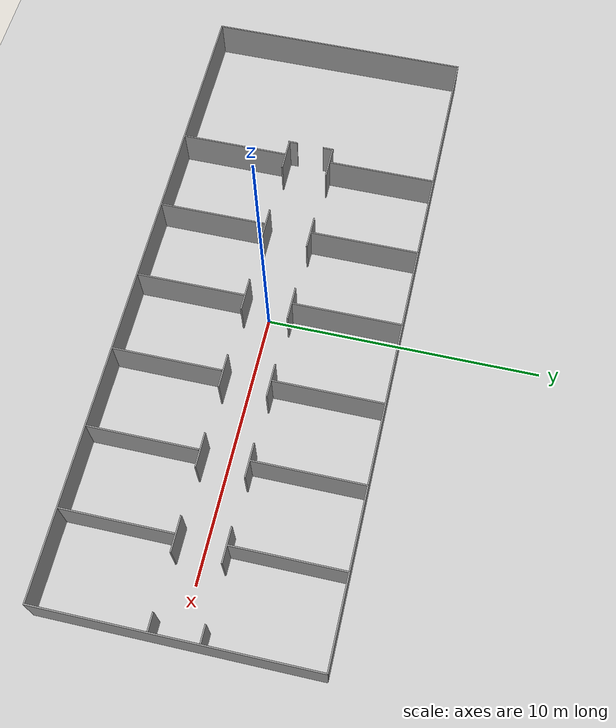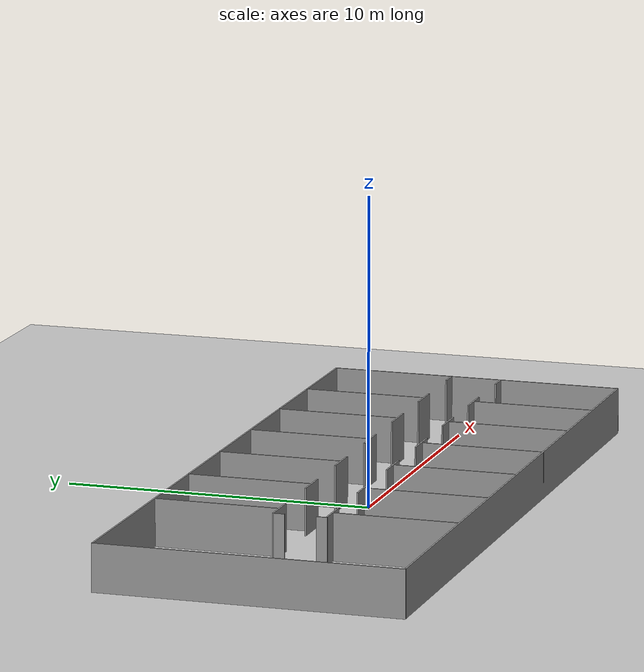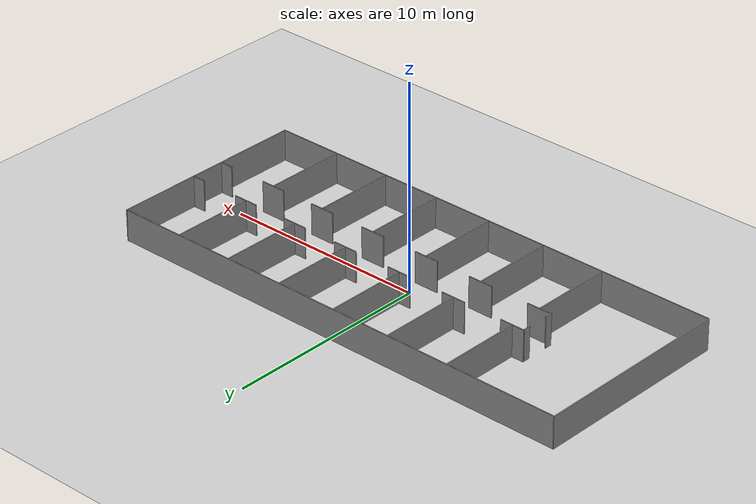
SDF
<?xml version='1.0'?>
<sdf version="1.5">
    <world name="default">
        <!-- A global light source -->
        <include>
            <uri>model://sun</uri>
        </include>
        <!-- A ground plane -->
        <include>
            <uri>model://ground_plane</uri>
        </include>
        <physics type="ode">
        <real_time_update_rate>1000.0</real_time_update_rate>
        <max_step_size>0.001</max_step_size>
        <real_time_factor>1</real_time_factor>
        <ode>
            <solver>
            <type>quick</type>
            <iters>150</iters>
            <precon_iters>0</precon_iters>
            <sor>1.400000</sor>
            <use_dynamic_moi_rescaling>1</use_dynamic_moi_rescaling>
            </solver>
            <constraints>
            <cfm>0.00001</cfm>
            <erp>0.2</erp>
            <contact_max_correcting_vel>2000.000000</contact_max_correcting_vel>
            <contact_surface_layer>0.01000</contact_surface_layer>
            </constraints>
        </ode>
        </physics>
        <!-- Sample object -->
        <include>
            <uri>model://Straight_corridor_v2</uri>
            <pose>0 0 0 0 0 1.571</pose>
        </include>
        <scene>
            <ambient>0.4 0.4 0.4 1</ambient>
            <background>0.7 0.7 0.7 1</background>
            <shadows>true</shadows>
        </scene>
        <gui fullscreen='0'>
            <camera name='user_camera'>
                <pose>0.8 0.0 12.0 0 1.5708 0</pose>
                <view_controller>orbit</view_controller>
            </camera>
        </gui>
    </world>
</sdf>
